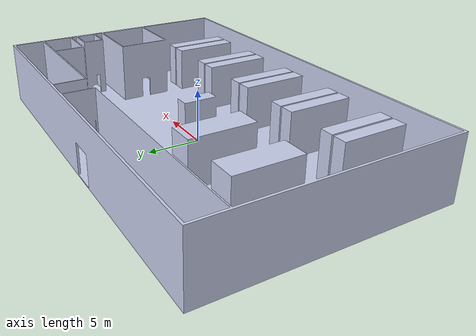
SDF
<?xml version="1.0" ?>
<sdf version="1.9">
  <world name="warehouse_world">
    <!-- Стандартные плагины физики и рендеринга Gazebo Sim -->
    <plugin filename="gz-sim-physics-system" name="gz::sim::systems::Physics"/>
    <plugin filename="gz-sim-user-commands-system" name="gz::sim::systems::UserCommands"/>
    <plugin filename="gz-sim-scene-broadcaster-system" name="gz::sim::systems::SceneBroadcaster"/>
    <plugin filename="gz-sim-physics-system" name="gz::sim::systems::Physics"/>
<plugin filename="gz-sim-user-commands-system" name="gz::sim::systems::UserCommands"/>
<plugin filename="gz-sim-scene-broadcaster-system" name="gz::sim::systems::SceneBroadcaster"/>
<plugin filename="gz-sim-sensors-system" name="gz::sim::systems::Sensors">
  <render_engine>ogre</render_engine>
</plugin>

    <!-- Свет -->
    <light type="directional" name="sun">
      <cast_shadows>true</cast_shadows>
      <pose>0 0 10 0 0 0</pose>
      <diffuse>0.8 0.8 0.8 1</diffuse>
      <specular>0.2 0.2 0.2 1</specular>
      <direction>-0.5 0.1 -0.9</direction>
    </light>

    <!-- Земля -->

    <!-- Модель склада из FreeCAD -->
    <model name="warehouse">
      <static>true</static>
      <pose>0 0 0 1.5708 0 0</pose>
      <link name="link">
        <visual name="visual">
          <geometry>
            <mesh><uri>warehouse.dae</uri></mesh>
          </geometry>
        </visual>
        <collision name="collision">
          <geometry>
            <mesh><uri>warehouse.dae</uri></mesh>
          </geometry>
        </collision>
      </link>
    </model>
  </world>
</sdf>
